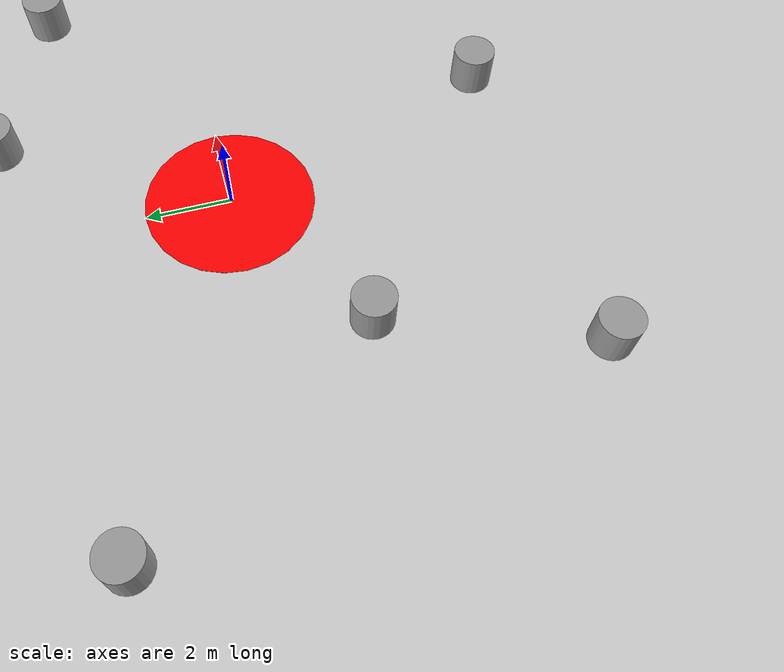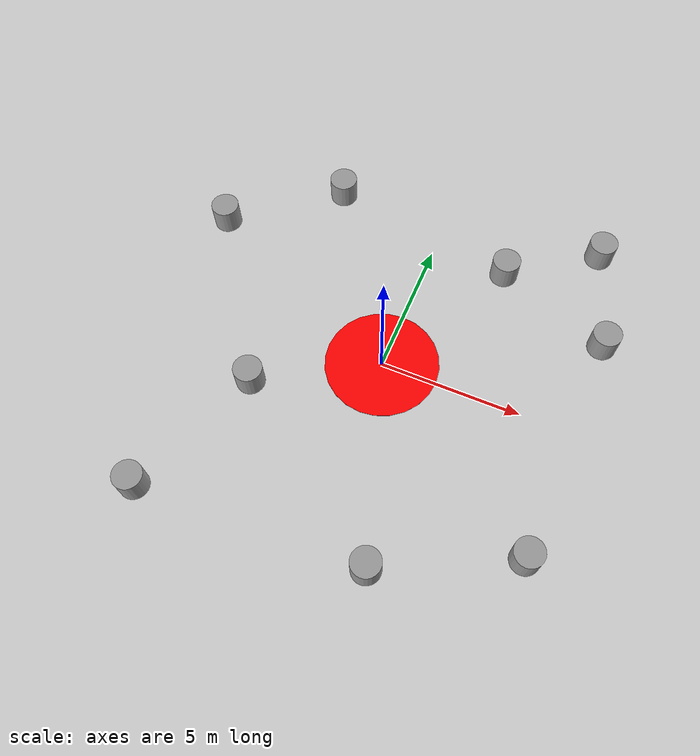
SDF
<sdf version="1.6">
 <world name="default">
  <light name="sun" type="directional">
   <pose>0 0 10 0 -0 0</pose>
   <diffuse>0.8 0.8 0.8 1</diffuse>
   <specular>0.2 0.2 0.2 1</specular>
   <attenuation>
    <range>1000</range>
    <constant>0.9</constant>
    <linear>0.01</linear>
    <quadratic>0.001</quadratic>
   </attenuation>
   <direction>-0.5 0.1 -0.9</direction>
  </light>
  <model name="ground_plane">
   <static>1</static>
   <link name="link">
    <collision name="collision">
     <geometry><plane><normal>0 0 1</normal><size>100 100</size></plane></geometry>
     <surface>
      <contact><collide_bitmask>65535</collide_bitmask></contact>
      <friction><ode><mu>100</mu><mu2>50</mu2></ode></friction>
     </surface>
    </collision>
    <visual name="visual">
     <cast_shadows>0</cast_shadows>
     <geometry><plane><normal>0 0 1</normal><size>100 100</size></plane></geometry>
     <material>
      <script><uri>file://media/materials/scripts/gazebo.material</uri><name>Gazebo/Grey</name></script>
     </material>
    </visual>
   </link>
  </model>
  <gravity>0 0 -9.8</gravity>
  <magnetic_field>6e-06 2.3e-05 -4.2e-05</magnetic_field>
  <atmosphere type="adiabatic"/>
  <physics name="default_physics" default="0" type="ode">
   <max_step_size>0.001</max_step_size>
   <real_time_factor>1</real_time_factor>
   <real_time_update_rate>1000</real_time_update_rate>
  </physics>
  <scene><ambient>0.4 0.4 0.4 1</ambient><background>0.7 0.7 0.7 1</background><shadows>1</shadows></scene>
  <audio><device>default</device></audio>
  <spherical_coordinates>
   <surface_model>EARTH_WGS84</surface_model>
   <latitude_deg>0</latitude_deg>
   <longitude_deg>0</longitude_deg>
   <elevation>0</elevation>
   <heading_deg>0</heading_deg>
  </spherical_coordinates>
  <model name="unit_cylinder">
   <link name="link">
    <inertial>
     <mass>1000</mass>
     <inertia><ixx>145.833</ixx><ixy>0</ixy><ixz>0</ixz><iyy>145.833</iyy><iyz>0</iyz><izz>125</izz></inertia>
    </inertial>
    <visual name="visual">
     <geometry><cylinder><radius>0.5</radius><length>1</length></cylinder></geometry>
     <material>
      <script><name>Gazebo/Grey</name><uri>file://media/materials/scripts/gazebo.material</uri></script>
      <shader type="vertex"><normal_map>__default__</normal_map></shader>
     </material>
    </visual>
    <collision name="collision">
     <geometry><cylinder><radius>0.5</radius><length>1</length></cylinder></geometry>
     <surface>
      <friction>
       <ode><mu>1</mu><mu2>1</mu2><fdir1>0 0 0</fdir1><slip1>0</slip1><slip2>0</slip2></ode>
       <torsional>
        <coefficient>1</coefficient>
        <patch_radius>0</patch_radius>
        <surface_radius>0</surface_radius>
        <use_patch_radius>1</use_patch_radius>
        <ode><slip>0</slip></ode>
       </torsional>
      </friction>
      <bounce><restitution_coefficient>0</restitution_coefficient><threshold>1e+06</threshold></bounce>
      <contact>
       <collide_without_contact>0</collide_without_contact>
       <collide_without_contact_bitmask>1</collide_without_contact_bitmask>
       <collide_bitmask>1</collide_bitmask>
       <ode>
        <soft_cfm>0</soft_cfm>
        <soft_erp>0.2</soft_erp>
        <kp>1e+13</kp>
        <kd>1</kd>
        <max_vel>0.01</max_vel>
        <min_depth>0</min_depth>
       </ode>
       <bullet>
        <split_impulse>1</split_impulse>
        <split_impulse_penetration_threshold>-0.01</split_impulse_penetration_threshold>
        <soft_cfm>0</soft_cfm>
        <soft_erp>0.2</soft_erp>
        <kp>1e+13</kp>
        <kd>1</kd>
       </bullet>
      </contact>
     </surface>
    </collision>
   </link>
   <static>0</static>
   <pose>6.61661 -4.58882 0.5 0 -0 0</pose>
  </model>
  <model name="unit_cylinder_clone">
   <link name="link">
    <inertial>
     <mass>1000</mass>
     <inertia><ixx>145.833</ixx><ixy>0</ixy><ixz>0</ixz><iyy>145.833</iyy><iyz>0</iyz><izz>125</izz></inertia>
    </inertial>
    <visual name="visual">
     <geometry><cylinder><radius>0.5</radius><length>1</length></cylinder></geometry>
     <material>
      <script><name>Gazebo/Grey</name><uri>file://media/materials/scripts/gazebo.material</uri></script>
      <shader type="vertex"><normal_map>__default__</normal_map></shader>
     </material>
    </visual>
    <collision name="collision">
     <geometry><cylinder><radius>0.5</radius><length>1</length></cylinder></geometry>
     <surface>
      <friction>
       <ode><mu>1</mu><mu2>1</mu2><fdir1>0 0 0</fdir1><slip1>0</slip1><slip2>0</slip2></ode>
       <torsional>
        <coefficient>1</coefficient>
        <patch_radius>0</patch_radius>
        <surface_radius>0</surface_radius>
        <use_patch_radius>1</use_patch_radius>
        <ode><slip>0</slip></ode>
       </torsional>
      </friction>
      <bounce><restitution_coefficient>0</restitution_coefficient><threshold>1e+06</threshold></bounce>
      <contact>
       <collide_without_contact>0</collide_without_contact>
       <collide_without_contact_bitmask>1</collide_without_contact_bitmask>
       <collide_bitmask>1</collide_bitmask>
       <ode>
        <soft_cfm>0</soft_cfm>
        <soft_erp>0.2</soft_erp>
        <kp>1e+13</kp>
        <kd>1</kd>
        <max_vel>0.01</max_vel>
        <min_depth>0</min_depth>
       </ode>
       <bullet>
        <split_impulse>1</split_impulse>
        <split_impulse_penetration_threshold>-0.01</split_impulse_penetration_threshold>
        <soft_cfm>0</soft_cfm>
        <soft_erp>0.2</soft_erp>
        <kp>1e+13</kp>
        <kd>1</kd>
       </bullet>
      </contact>
     </surface>
    </collision>
   </link>
   <static>0</static>
   <pose>2.22909 -6.72356 0.5 0 -0 0</pose>
  </model>
  <model name="unit_cylinder_clone_0">
   <link name="link">
    <inertial>
     <mass>1000</mass>
     <inertia><ixx>145.833</ixx><ixy>0</ixy><ixz>0</ixz><iyy>145.833</iyy><iyz>0</iyz><izz>125</izz></inertia>
    </inertial>
    <visual name="visual">
     <geometry><cylinder><radius>0.5</radius><length>1</length></cylinder></geometry>
     <material>
      <script><name>Gazebo/Grey</name><uri>file://media/materials/scripts/gazebo.material</uri></script>
      <shader type="vertex"><normal_map>__default__</normal_map></shader>
     </material>
    </visual>
    <collision name="collision">
     <geometry><cylinder><radius>0.5</radius><length>1</length></cylinder></geometry>
     <surface>
      <friction>
       <ode><mu>1</mu><mu2>1</mu2><fdir1>0 0 0</fdir1><slip1>0</slip1><slip2>0</slip2></ode>
       <torsional>
        <coefficient>1</coefficient>
        <patch_radius>0</patch_radius>
        <surface_radius>0</surface_radius>
        <use_patch_radius>1</use_patch_radius>
        <ode><slip>0</slip></ode>
       </torsional>
      </friction>
      <bounce><restitution_coefficient>0</restitution_coefficient><threshold>1e+06</threshold></bounce>
      <contact>
       <collide_without_contact>0</collide_without_contact>
       <collide_without_contact_bitmask>1</collide_without_contact_bitmask>
       <collide_bitmask>1</collide_bitmask>
       <ode>
        <soft_cfm>0</soft_cfm>
        <soft_erp>0.2</soft_erp>
        <kp>1e+13</kp>
        <kd>1</kd>
        <max_vel>0.01</max_vel>
        <min_depth>0</min_depth>
       </ode>
       <bullet>
        <split_impulse>1</split_impulse>
        <split_impulse_penetration_threshold>-0.01</split_impulse_penetration_threshold>
        <soft_cfm>0</soft_cfm>
        <soft_erp>0.2</soft_erp>
        <kp>1e+13</kp>
        <kd>1</kd>
       </bullet>
      </contact>
     </surface>
    </collision>
   </link>
   <static>0</static>
   <pose>6.86998 3.56541 0.5 0 -0 0</pose>
  </model>
  <model name="unit_cylinder_clone_1">
   <link name="link">
    <inertial>
     <mass>1000</mass>
     <inertia><ixx>145.833</ixx><ixy>0</ixy><ixz>0</ixz><iyy>145.833</iyy><iyz>0</iyz><izz>125</izz></inertia>
    </inertial>
    <visual name="visual">
     <geometry><cylinder><radius>0.5</radius><length>1</length></cylinder></geometry>
     <material>
      <script><name>Gazebo/Grey</name><uri>file://media/materials/scripts/gazebo.material</uri></script>
      <shader type="vertex"><normal_map>__default__</normal_map></shader>
     </material>
    </visual>
    <collision name="collision">
     <geometry><cylinder><radius>0.5</radius><length>1</length></cylinder></geometry>
     <surface>
      <friction>
       <ode><mu>1</mu><mu2>1</mu2><fdir1>0 0 0</fdir1><slip1>0</slip1><slip2>0</slip2></ode>
       <torsional>
        <coefficient>1</coefficient>
        <patch_radius>0</patch_radius>
        <surface_radius>0</surface_radius>
        <use_patch_radius>1</use_patch_radius>
        <ode><slip>0</slip></ode>
       </torsional>
      </friction>
      <bounce><restitution_coefficient>0</restitution_coefficient><threshold>1e+06</threshold></bounce>
      <contact>
       <collide_without_contact>0</collide_without_contact>
       <collide_without_contact_bitmask>1</collide_without_contact_bitmask>
       <collide_bitmask>1</collide_bitmask>
       <ode>
        <soft_cfm>0</soft_cfm>
        <soft_erp>0.2</soft_erp>
        <kp>1e+13</kp>
        <kd>1</kd>
        <max_vel>0.01</max_vel>
        <min_depth>0</min_depth>
       </ode>
       <bullet>
        <split_impulse>1</split_impulse>
        <split_impulse_penetration_threshold>-0.01</split_impulse_penetration_threshold>
        <soft_cfm>0</soft_cfm>
        <soft_erp>0.2</soft_erp>
        <kp>1e+13</kp>
        <kd>1</kd>
       </bullet>
      </contact>
     </surface>
    </collision>
   </link>
   <static>0</static>
   <pose>5.78671 7.20785 0.5 0 -0 0</pose>
  </model>
  <model name="unit_cylinder_clone_2">
   <link name="link">
    <inertial>
     <mass>1000</mass>
     <inertia><ixx>145.833</ixx><ixy>0</ixy><ixz>0</ixz><iyy>145.833</iyy><iyz>0</iyz><izz>125</izz></inertia>
    </inertial>
    <visual name="visual">
     <geometry><cylinder><radius>0.5</radius><length>1</length></cylinder></geometry>
     <material>
      <script><name>Gazebo/Grey</name><uri>file://media/materials/scripts/gazebo.material</uri></script>
      <shader type="vertex"><normal_map>__default__</normal_map></shader>
     </material>
    </visual>
    <collision name="collision">
     <geometry><cylinder><radius>0.5</radius><length>1</length></cylinder></geometry>
     <surface>
      <friction>
       <ode><mu>1</mu><mu2>1</mu2><fdir1>0 0 0</fdir1><slip1>0</slip1><slip2>0</slip2></ode>
       <torsional>
        <coefficient>1</coefficient>
        <patch_radius>0</patch_radius>
        <surface_radius>0</surface_radius>
        <use_patch_radius>1</use_patch_radius>
        <ode><slip>0</slip></ode>
       </torsional>
      </friction>
      <bounce><restitution_coefficient>0</restitution_coefficient><threshold>1e+06</threshold></bounce>
      <contact>
       <collide_without_contact>0</collide_without_contact>
       <collide_without_contact_bitmask>1</collide_without_contact_bitmask>
       <collide_bitmask>1</collide_bitmask>
       <ode>
        <soft_cfm>0</soft_cfm>
        <soft_erp>0.2</soft_erp>
        <kp>1e+13</kp>
        <kd>1</kd>
        <max_vel>0.01</max_vel>
        <min_depth>0</min_depth>
       </ode>
       <bullet>
        <split_impulse>1</split_impulse>
        <split_impulse_penetration_threshold>-0.01</split_impulse_penetration_threshold>
        <soft_cfm>0</soft_cfm>
        <soft_erp>0.2</soft_erp>
        <kp>1e+13</kp>
        <kd>1</kd>
       </bullet>
      </contact>
     </surface>
    </collision>
   </link>
   <static>0</static>
   <pose>2.7566 5.12804 0.5 0 -0 0</pose>
  </model>
  <model name="unit_cylinder_clone_3">
   <link name="link">
    <inertial>
     <mass>1000</mass>
     <inertia><ixx>145.833</ixx><ixy>0</ixy><ixz>0</ixz><iyy>145.833</iyy><iyz>0</iyz><izz>125</izz></inertia>
    </inertial>
    <visual name="visual">
     <geometry><cylinder><radius>0.5</radius><length>1</length></cylinder></geometry>
     <material>
      <script><name>Gazebo/Grey</name><uri>file://media/materials/scripts/gazebo.material</uri></script>
      <shader type="vertex"><normal_map>__default__</normal_map></shader>
     </material>
    </visual>
    <collision name="collision">
     <geometry><cylinder><radius>0.5</radius><length>1</length></cylinder></geometry>
     <surface>
      <friction>
       <ode><mu>1</mu><mu2>1</mu2><fdir1>0 0 0</fdir1><slip1>0</slip1><slip2>0</slip2></ode>
       <torsional>
        <coefficient>1</coefficient>
        <patch_radius>0</patch_radius>
        <surface_radius>0</surface_radius>
        <use_patch_radius>1</use_patch_radius>
        <ode><slip>0</slip></ode>
       </torsional>
      </friction>
      <bounce><restitution_coefficient>0</restitution_coefficient><threshold>1e+06</threshold></bounce>
      <contact>
       <collide_without_contact>0</collide_without_contact>
       <collide_without_contact_bitmask>1</collide_without_contact_bitmask>
       <collide_bitmask>1</collide_bitmask>
       <ode>
        <soft_cfm>0</soft_cfm>
        <soft_erp>0.2</soft_erp>
        <kp>1e+13</kp>
        <kd>1</kd>
        <max_vel>0.01</max_vel>
        <min_depth>0</min_depth>
       </ode>
       <bullet>
        <split_impulse>1</split_impulse>
        <split_impulse_penetration_threshold>-0.01</split_impulse_penetration_threshold>
        <soft_cfm>0</soft_cfm>
        <soft_erp>0.2</soft_erp>
        <kp>1e+13</kp>
        <kd>1</kd>
       </bullet>
      </contact>
     </surface>
    </collision>
   </link>
   <static>0</static>
   <pose>-4.14734 6.30046 0.5 0 -0 0</pose>
  </model>
  <model name="unit_cylinder_clone_4">
   <link name="link">
    <inertial>
     <mass>1000</mass>
     <inertia><ixx>145.833</ixx><ixy>0</ixy><ixz>0</ixz><iyy>145.833</iyy><iyz>0</iyz><izz>125</izz></inertia>
    </inertial>
    <visual name="visual">
     <geometry><cylinder><radius>0.5</radius><length>1</length></cylinder></geometry>
     <material>
      <script><name>Gazebo/Grey</name><uri>file://media/materials/scripts/gazebo.material</uri></script>
      <shader type="vertex"><normal_map>__default__</normal_map></shader>
     </material>
    </visual>
    <collision name="collision">
     <geometry><cylinder><radius>0.5</radius><length>1</length></cylinder></geometry>
     <surface>
      <friction>
       <ode><mu>1</mu><mu2>1</mu2><fdir1>0 0 0</fdir1><slip1>0</slip1><slip2>0</slip2></ode>
       <torsional>
        <coefficient>1</coefficient>
        <patch_radius>0</patch_radius>
        <surface_radius>0</surface_radius>
        <use_patch_radius>1</use_patch_radius>
        <ode><slip>0</slip></ode>
       </torsional>
      </friction>
      <bounce><restitution_coefficient>0</restitution_coefficient><threshold>1e+06</threshold></bounce>
      <contact>
       <collide_without_contact>0</collide_without_contact>
       <collide_without_contact_bitmask>1</collide_without_contact_bitmask>
       <collide_bitmask>1</collide_bitmask>
       <ode>
        <soft_cfm>0</soft_cfm>
        <soft_erp>0.2</soft_erp>
        <kp>1e+13</kp>
        <kd>1</kd>
        <max_vel>0.01</max_vel>
        <min_depth>0</min_depth>
       </ode>
       <bullet>
        <split_impulse>1</split_impulse>
        <split_impulse_penetration_threshold>-0.01</split_impulse_penetration_threshold>
        <soft_cfm>0</soft_cfm>
        <soft_erp>0.2</soft_erp>
        <kp>1e+13</kp>
        <kd>1</kd>
       </bullet>
      </contact>
     </surface>
    </collision>
   </link>
   <static>0</static>
   <pose>-7.75443 3.46497 0.5 0 -0 0</pose>
  </model>
  <model name="unit_cylinder_clone_6">
   <link name="link">
    <inertial>
     <mass>1000</mass>
     <inertia><ixx>145.833</ixx><ixy>0</ixy><ixz>0</ixz><iyy>145.833</iyy><iyz>0</iyz><izz>125</izz></inertia>
    </inertial>
    <visual name="visual">
     <geometry><cylinder><radius>0.5</radius><length>1</length></cylinder></geometry>
     <material>
      <script><name>Gazebo/Grey</name><uri>file://media/materials/scripts/gazebo.material</uri></script>
      <shader type="vertex"><normal_map>__default__</normal_map></shader>
     </material>
    </visual>
    <collision name="collision">
     <geometry><cylinder><radius>0.5</radius><length>1</length></cylinder></geometry>
     <surface>
      <friction>
       <ode><mu>1</mu><mu2>1</mu2><fdir1>0 0 0</fdir1><slip1>0</slip1><slip2>0</slip2></ode>
       <torsional>
        <coefficient>1</coefficient>
        <patch_radius>0</patch_radius>
        <surface_radius>0</surface_radius>
        <use_patch_radius>1</use_patch_radius>
        <ode><slip>0</slip></ode>
       </torsional>
      </friction>
      <bounce><restitution_coefficient>0</restitution_coefficient><threshold>1e+06</threshold></bounce>
      <contact>
       <collide_without_contact>0</collide_without_contact>
       <collide_without_contact_bitmask>1</collide_without_contact_bitmask>
       <collide_bitmask>1</collide_bitmask>
       <ode>
        <soft_cfm>0</soft_cfm>
        <soft_erp>0.2</soft_erp>
        <kp>1e+13</kp>
        <kd>1</kd>
        <max_vel>0.01</max_vel>
        <min_depth>0</min_depth>
       </ode>
       <bullet>
        <split_impulse>1</split_impulse>
        <split_impulse_penetration_threshold>-0.01</split_impulse_penetration_threshold>
        <soft_cfm>0</soft_cfm>
        <soft_erp>0.2</soft_erp>
        <kp>1e+13</kp>
        <kd>1</kd>
       </bullet>
      </contact>
     </surface>
    </collision>
   </link>
   <static>0</static>
   <pose>-5.68066 -7.09605 0.5 0 -0 0</pose>
  </model>
  <model name="unit_cylinder_clone_7">
   <link name="link">
    <inertial>
     <mass>1000</mass>
     <inertia><ixx>145.833</ixx><ixy>0</ixy><ixz>0</ixz><iyy>145.833</iyy><iyz>0</iyz><izz>125</izz></inertia>
    </inertial>
    <visual name="visual">
     <geometry><cylinder><radius>0.5</radius><length>1</length></cylinder></geometry>
     <material>
      <script><name>Gazebo/Grey</name><uri>file://media/materials/scripts/gazebo.material</uri></script>
      <shader type="vertex"><normal_map>__default__</normal_map></shader>
     </material>
    </visual>
    <collision name="collision">
     <geometry><cylinder><radius>0.5</radius><length>1</length></cylinder></geometry>
     <surface>
      <friction>
       <ode><mu>1</mu><mu2>1</mu2><fdir1>0 0 0</fdir1><slip1>0</slip1><slip2>0</slip2></ode>
       <torsional>
        <coefficient>1</coefficient>
        <patch_radius>0</patch_radius>
        <surface_radius>0</surface_radius>
        <use_patch_radius>1</use_patch_radius>
        <ode><slip>0</slip></ode>
       </torsional>
      </friction>
      <bounce><restitution_coefficient>0</restitution_coefficient><threshold>1e+06</threshold></bounce>
      <contact>
       <collide_without_contact>0</collide_without_contact>
       <collide_without_contact_bitmask>1</collide_without_contact_bitmask>
       <collide_bitmask>1</collide_bitmask>
       <ode>
        <soft_cfm>0</soft_cfm>
        <soft_erp>0.2</soft_erp>
        <kp>1e+13</kp>
        <kd>1</kd>
        <max_vel>0.01</max_vel>
        <min_depth>0</min_depth>
       </ode>
       <bullet>
        <split_impulse>1</split_impulse>
        <split_impulse_penetration_threshold>-0.01</split_impulse_penetration_threshold>
        <soft_cfm>0</soft_cfm>
        <soft_erp>0.2</soft_erp>
        <kp>1e+13</kp>
        <kd>1</kd>
       </bullet>
      </contact>
     </surface>
    </collision>
   </link>
   <static>0</static>
   <pose>-3.89451 -2.33657 0.5 0 -0 0</pose>
  </model>
  <model name="target_1">
   <link name="link_0">
    <inertial>
     <mass>1000</mass>
     <inertia><ixx>1000</ixx><ixy>0</ixy><ixz>0</ixz><iyy>1000</iyy><iyz>0</iyz><izz>2000</izz></inertia>
    </inertial>
    <pose>0.115642 -0.005319 0 0 -0 0</pose>
    <visual name="visual">
     <geometry><cylinder><radius>2</radius><length>0.01</length></cylinder></geometry>
     <material>
      <lighting>1</lighting>
      <script><uri>file://media/materials/scripts/gazebo.material</uri><name>Gazebo/Grey</name></script>
      <shader type="vertex"><normal_map>__default__</normal_map></shader>
      <ambient>1 0 0 0</ambient>
      <diffuse>0.7 0.7 0.7 1</diffuse>
      <specular>0.01 0.01 0.01 1</specular>
      <emissive>0 0 0 1</emissive>
     </material>
    </visual>
    <collision name="collision">
     <geometry><cylinder><radius>2</radius><length>0.001</length></cylinder></geometry>
     <surface>
      <friction>
       <ode><mu>1</mu><mu2>1</mu2><fdir1>0 0 0</fdir1><slip1>0</slip1><slip2>0</slip2></ode>
       <torsional>
        <coefficient>1</coefficient>
        <patch_radius>0</patch_radius>
        <surface_radius>0</surface_radius>
        <use_patch_radius>1</use_patch_radius>
        <ode><slip>0</slip></ode>
       </torsional>
      </friction>
      <bounce><restitution_coefficient>0</restitution_coefficient><threshold>1e+06</threshold></bounce>
      <contact>
       <collide_without_contact>0</collide_without_contact>
       <collide_without_contact_bitmask>1</collide_without_contact_bitmask>
       <collide_bitmask>1</collide_bitmask>
       <ode>
        <soft_cfm>0</soft_cfm>
        <soft_erp>0.2</soft_erp>
        <kp>1e+13</kp>
        <kd>1</kd>
        <max_vel>0.01</max_vel>
        <min_depth>0</min_depth>
       </ode>
       <bullet>
        <split_impulse>1</split_impulse>
        <split_impulse_penetration_threshold>-0.01</split_impulse_penetration_threshold>
        <soft_cfm>0</soft_cfm>
        <soft_erp>0.2</soft_erp>
        <kp>1e+13</kp>
        <kd>1</kd>
       </bullet>
      </contact>
     </surface>
    </collision>
   </link>
   <model name="target">
    <link name="link_0">
     <inertial>
      <mass>100</mass>
      <inertia><ixx>14.5833</ixx><ixy>0</ixy><ixz>0</ixz><iyy>14.5833</iyy><iyz>0</iyz><izz>12.5</izz></inertia>
     </inertial>
     <pose>0 0 -0.46 0 -0 0</pose>
     <visual name="visual">
      <geometry><cylinder><radius>2</radius><length>0.005</length></cylinder></geometry>
      <material>
       <lighting>1</lighting>
       <script><uri>file://media/materials/scripts/gazebo.material</uri><name>Gazebo/Grey</name></script>
       <shader type="vertex"><normal_map>__default__</normal_map></shader>
       <ambient>1 0.3 0.3 1</ambient>
       <diffuse>0.7 0.7 0.7 1</diffuse>
       <specular>0.01 0.01 0.01 1</specular>
       <emissive>0 0 0 1</emissive>
      </material>
      <transparency>0.3</transparency>
     </visual>
    </link>
    <static>0</static>
    <pose>-636.697 -22.5555 0 0 -0 0</pose>
   </model>
   <model name="target_1">
    <link name="link_0">
     <inertial>
      <mass>100</mass>
      <inertia><ixx>100</ixx><ixy>0</ixy><ixz>0</ixz><iyy>100</iyy><iyz>0</iyz><izz>200</izz></inertia>
     </inertial>
     <pose>0 0 0 3e-06 4e-06 -0</pose>
     <visual name="visual">
      <pose>0 0 -0.49 0 -0 0</pose>
      <geometry><cylinder><radius>2</radius><length>0.005</length></cylinder></geometry>
      <material>
       <lighting>1</lighting>
       <script><uri>file://media/materials/scripts/gazebo.material</uri><name>Gazebo/Grey</name></script>
       <shader type="vertex"><normal_map>__default__</normal_map></shader>
       <ambient>1 0 0 0</ambient>
       <diffuse>0.7 0.7 0.7 1</diffuse>
       <specular>0.01 0.01 0.01 1</specular>
       <emissive>0 0 0 1</emissive>
      </material>
     </visual>
     <collision name="collision">
      <pose>0 0 -0.49 0 -0 0</pose>
      <geometry><cylinder><radius>2</radius><length>0.005</length></cylinder></geometry>
      <surface>
       <friction>
        <ode><mu>1</mu><mu2>1</mu2><fdir1>0 0 0</fdir1><slip1>0</slip1><slip2>0</slip2></ode>
        <torsional>
         <coefficient>1</coefficient>
         <patch_radius>0</patch_radius>
         <surface_radius>0</surface_radius>
         <use_patch_radius>1</use_patch_radius>
         <ode><slip>0</slip></ode>
        </torsional>
       </friction>
       <bounce><restitution_coefficient>0</restitution_coefficient><threshold>1e+06</threshold></bounce>
       <contact>
        <collide_without_contact>0</collide_without_contact>
        <collide_without_contact_bitmask>1</collide_without_contact_bitmask>
        <collide_bitmask>1</collide_bitmask>
        <ode>
         <soft_cfm>0</soft_cfm>
         <soft_erp>0.2</soft_erp>
         <kp>1e+13</kp>
         <kd>1</kd>
         <max_vel>0.01</max_vel>
         <min_depth>0</min_depth>
        </ode>
        <bullet>
         <split_impulse>1</split_impulse>
         <split_impulse_penetration_threshold>-0.01</split_impulse_penetration_threshold>
         <soft_cfm>0</soft_cfm>
         <soft_erp>0.2</soft_erp>
         <kp>1e+13</kp>
         <kd>1</kd>
        </bullet>
       </contact>
      </surface>
     </collision>
    </link>
    <static>0</static>
    <pose>31.7452 -6.93886 0 0 -0 0</pose>
   </model>
   <static>0</static>
   <pose>-0.112955 0.035199 0 0 -0 0</pose>
  </model>
 </world>
</sdf>
